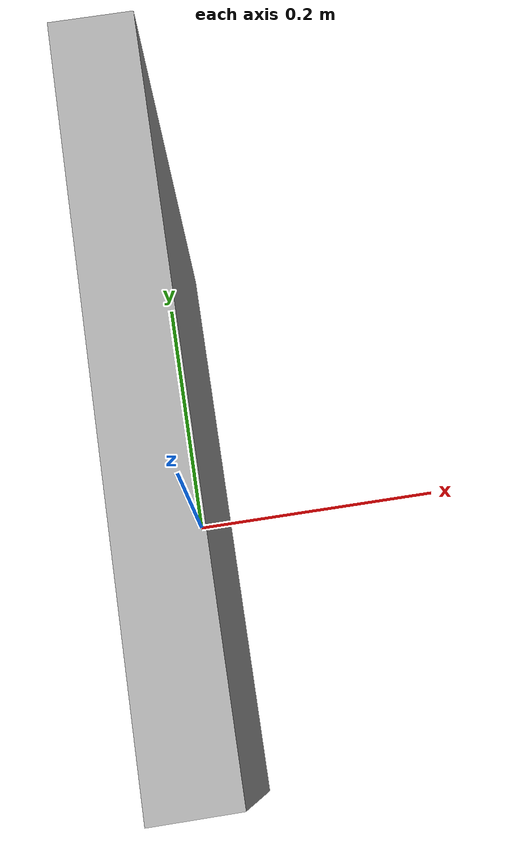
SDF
<?xml version='1.0'?>
<sdf version="1.4">
  <model name='yamasemi_wall'>
    <pose>0 0 0.2 0 0 0</pose>
    <static>0</static>
    <link name='link'>
      <inertial>
        <mass>1</mass>
        <inertia>
          <ixx>0.01</ixx>
          <ixy>0</ixy>
          <ixz>0</ixz>
          <iyy>0.02</iyy>
          <iyz>0</iyz>
          <izz>0.03</izz>
        </inertia>
      </inertial>
      <collision name='collision'>
        <geometry>
          <box>
            <size>0.05 0.45 0.4</size>
          </box>
        </geometry>
      </collision>
      <visual name='visual'>
        <geometry>
          <box>
            <size>0.05 0.45 0.4</size>
          </box>
        </geometry>
        <material>
          <script>
            <uri>model://yumebros_picture/materials/scripts</uri>
            <uri>model://yumebros_picture/materials/textures</uri>
            <name>Yumebros/Picture</name>
          </script>
        </material>
      </visual>
      <self_collide>1</self_collide>
      <gravity>1</gravity>
    </link>
  </model>
</sdf>
